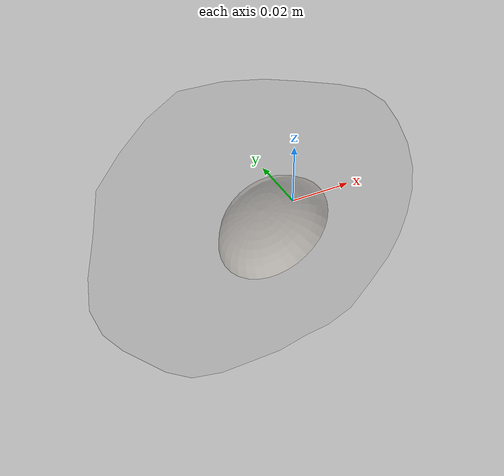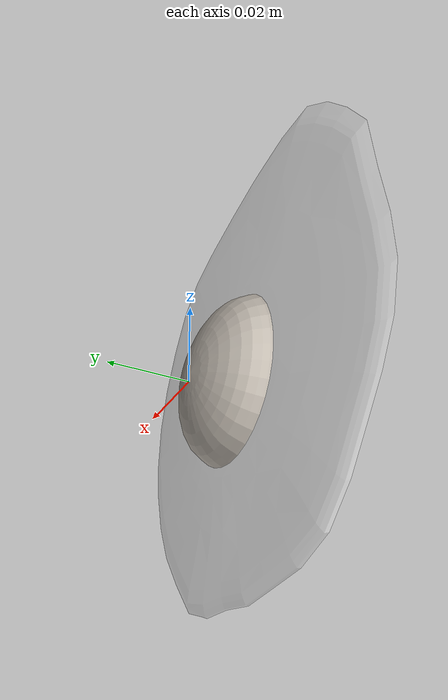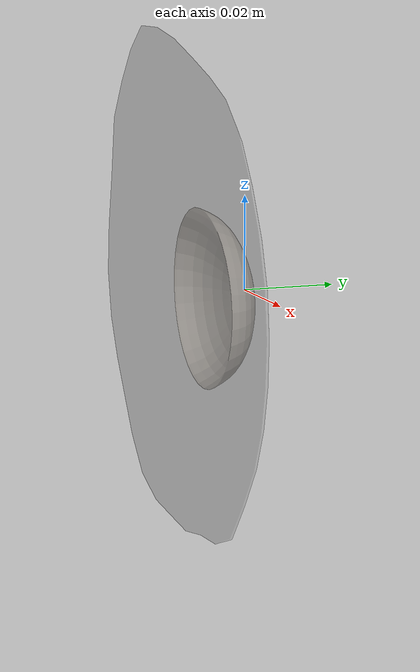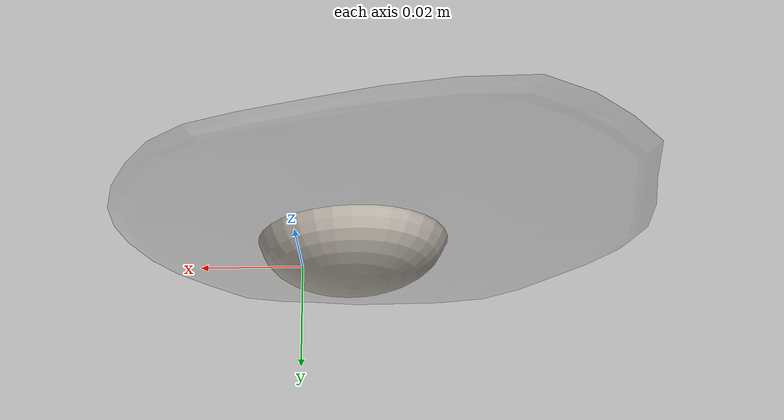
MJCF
<mujoco model="Egg_Cracked_22">
  <compiler autolimits="true" boundmass="0.01" angle="radian"/>
  <default>
    <default class="/">
      <default class="__VISUAL_MJT__">
        <geom contype="0" conaffinity="0" group="0"/>
      </default>
      <default class="__STRUCTURAL_MJT__">
        <geom contype="8" conaffinity="15" group="4" friction="0.90000000000000002 0.90000000000000002 0.001" solref="0.025000000000000001 1" solimp="0.998 0.998 0.001"/>
      </default>
      <default class="__DYNAMIC_MJT__">
        <geom contype="1" conaffinity="15" group="4" friction="0.90000000000000002 0.90000000000000002 0.001" solref="0.025000000000000001 1" solimp="0.998 0.998 0.001"/>
      </default>
    </default>
  </default>
  <asset>
    <texture name="Fried_Egg_White_Uncooked_Mat" type="2d" file="Fried_Egg_AlbedoTransparency.png"/>
    <material name="material_Fried_Egg_White_Uncooked_Mat" class="/" texture="Fried_Egg_White_Uncooked_Mat" specular="0.5" shininess="0.5" rgba="1 1 1 0.5"/>
    <texture name="Fried_Egg_Yolk_Mat" type="2d" file="Fried_Egg_AlbedoTransparency.png"/>
    <material name="material_Fried_Egg_Yolk_Mat" class="/" texture="Fried_Egg_Yolk_Mat" specular="0.5" shininess="0.5" rgba="1 1 1 1"/>
    <mesh name="Egg_Cracked_22_fried_egg_21_0" class="/" file="Egg_Cracked_22_fried_egg_21/Egg_Cracked_22_fried_egg_21_0.obj" scale="1 1 1"/>
    <mesh name="Egg_Cracked_22_fried_egg_21_1" class="/" file="Egg_Cracked_22_fried_egg_21/Egg_Cracked_22_fried_egg_21_1.obj" scale="1 1 1"/>
  </asset>
  <worldbody>
    <body name="Egg_Cracked_22">
      <joint name="Egg_Cracked_22_free" class="/" type="free" pos="0 0 0" axis="0 0 1" stiffness="0" range="0 0" armature="0" damping="0.10000000000000001" frictionloss="0"/>
      <body name="Egg_Cracked_22_fried_egg_21" pos="-0.0081600000000000006 -0.01023 -0.0037499999999999999" quat="1 0 0 0">
        <geom name="Egg_Cracked_22_fried_egg_21_0" class="__VISUAL_MJT__" type="mesh" material="material_Fried_Egg_White_Uncooked_Mat" shellinertia="false" mesh="Egg_Cracked_22_fried_egg_21_0"/>
        <geom name="Egg_Cracked_22_fried_egg_21_1" class="__VISUAL_MJT__" type="mesh" material="material_Fried_Egg_Yolk_Mat" shellinertia="false" mesh="Egg_Cracked_22_fried_egg_21_1"/>
        <geom name="Egg_Cracked_22_PrimitiveCollider_0" class="__DYNAMIC_MJT__" type="box" size="0.055507209151983261 0.010231256484985352 0.056099452078342438" rgba="0 1 0 1" pos="-0.0081600882112979889 0.010231256484985352 0.0037480220198631287" quat="1 0 0 0"/>
      </body>
    </body>
  </worldbody>
</mujoco>
